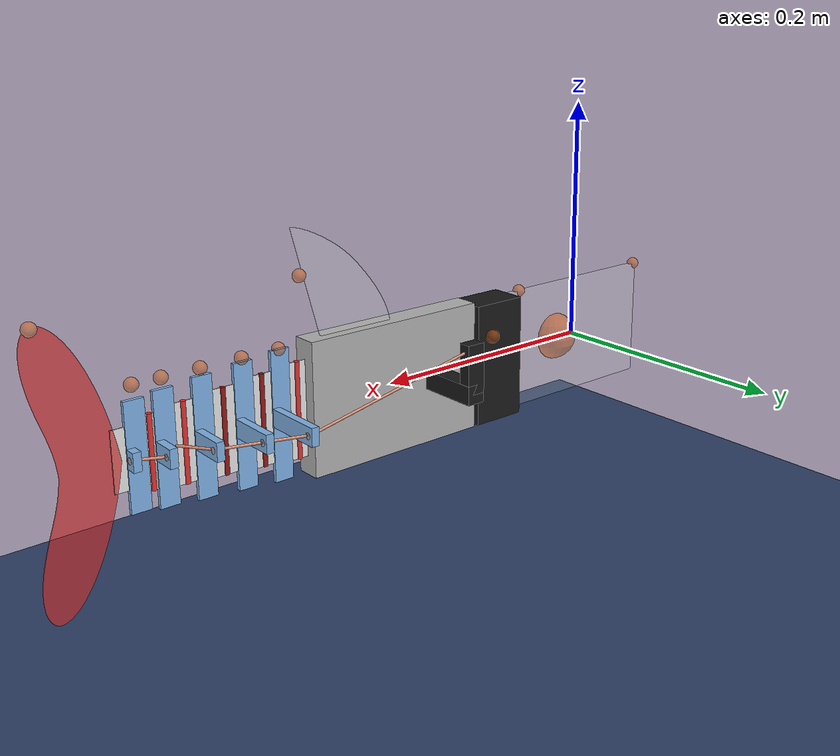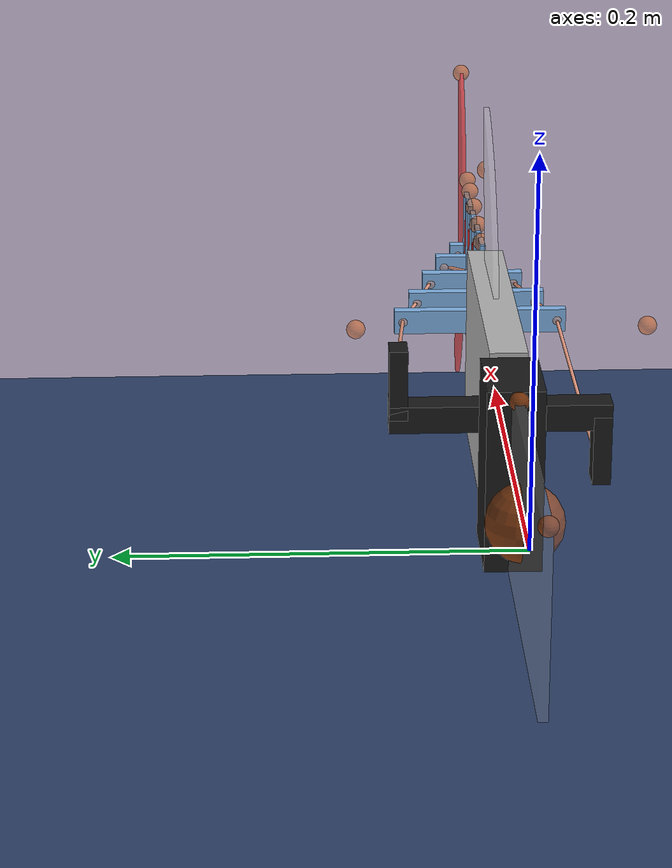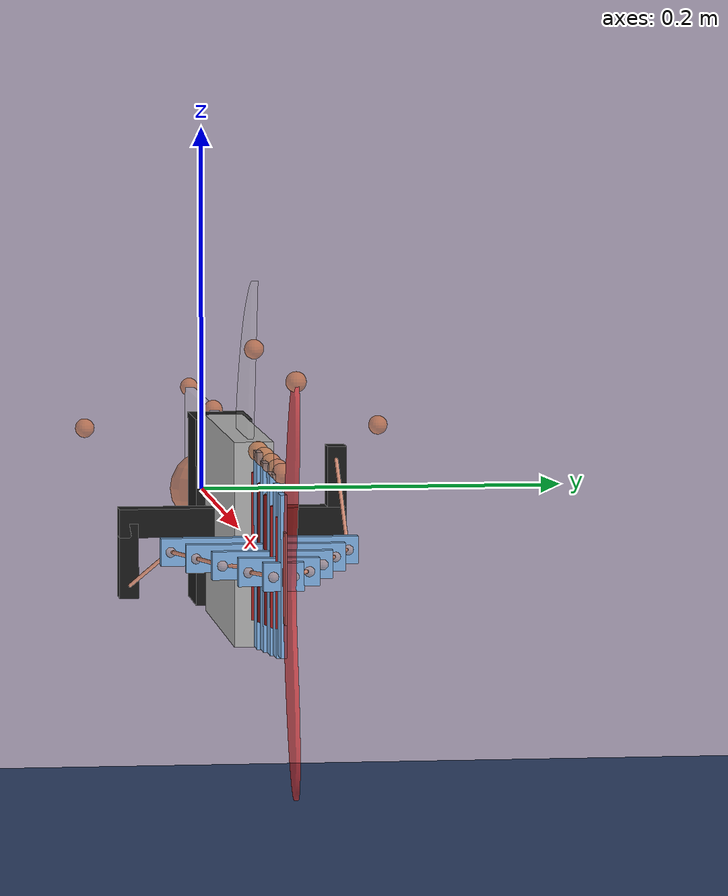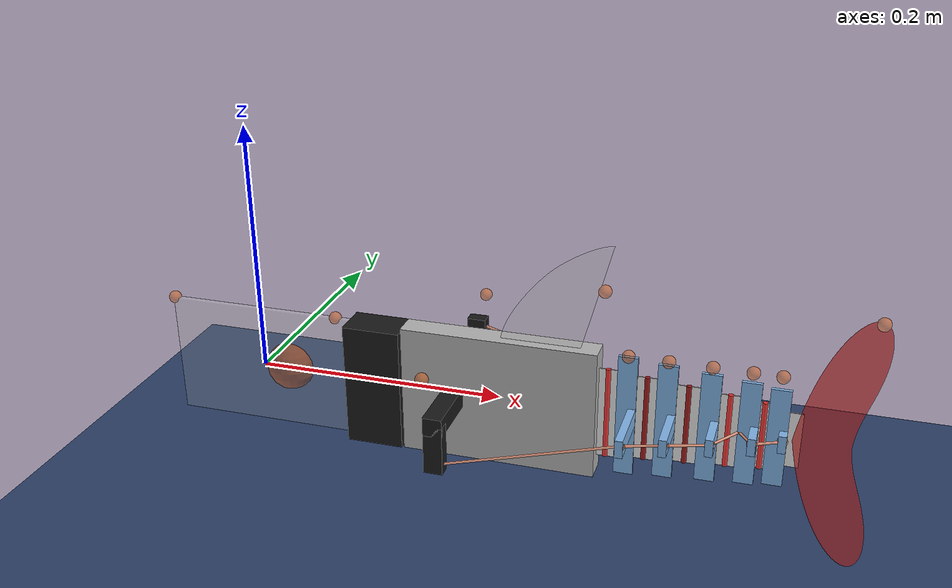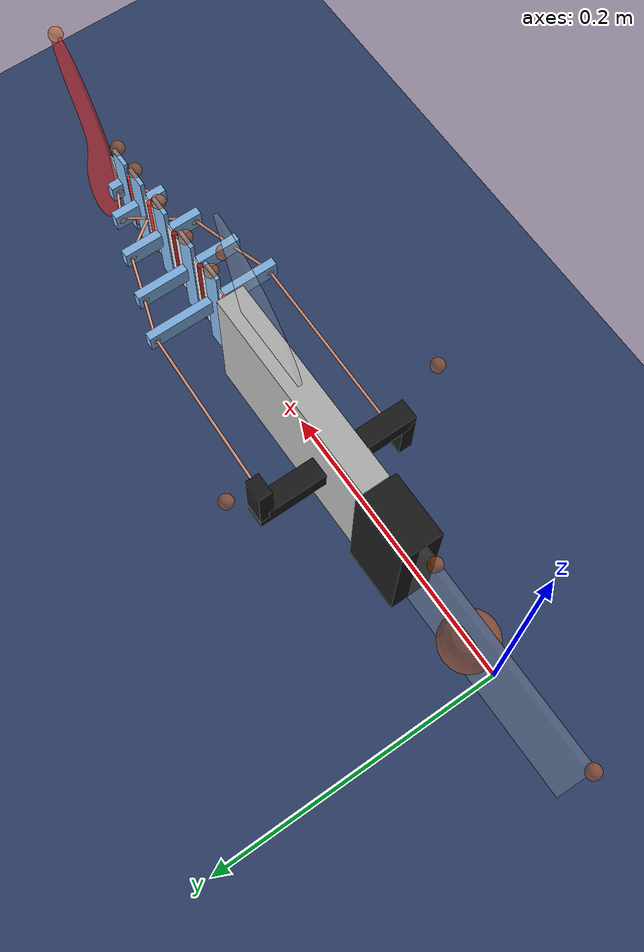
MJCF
<!-- Code entirely from Mike Yan Michelis-->
<mujoco model="tendonFish">
    <option gravity="0 0 0" density="1000" viscosity="0.0013" integrator="implicitfast" timestep="0.001" iterations="100" solver="Newton" tolerance="1e-15" ls_tolerance="1e-9" noslip_tolerance="1e-9" o_solimp="0 0.01 0.01 0.1 2">
        <flag contact="disable"/>
    </option>

    <visual>
        <global offheight="2160" offwidth="3840"/>
        <rgba haze=".3 .3 .3 1"/>
    </visual>

    <asset>
        <texture type="skybox" builtin="gradient" rgb1="0.6 0.6 0.6" rgb2="0 0 0" width="512" height="512"/>
        <texture name="texplane" type="2d" builtin="checker" rgb1=".15 .2 .35" rgb2=".2 .3 .45" width="512" height="512" mark="cross" markrgb=".8 .8 .8"/>
        <material name="matplane" reflectance="0.3" texture="texplane" texrepeat="10 10" texuniform="true"/>
        <mesh name="finTop" file="C:\Users\15405\OneDrive\Desktop\Career\ETHZ\ETHZ Work\mujoco-3.3.2-windows-x86_64\model\mesh\finTop.obj"/>
        <mesh name="finTail" file="C:\Users\15405\OneDrive\Desktop\Career\ETHZ\ETHZ Work\mujoco-3.3.2-windows-x86_64\model\mesh\finTail.obj"/>

        <material name="acrylic" rgba=".9 .9 .9 0.2"/>
        <material name="alu" reflectance="0.9" specular="0.9" shininess="0.9" rgba=".7 .7 .7 1"/>
        <material name="marker" rgba=".9 .4 .1 .5"/>
    </asset>

    <default>
        <joint type="hinge" pos="0 0 0" axis="0 0 1" range="-80 80" stiffness="0.65" damping="0.0"/>
        <geom fluidcoef="0.1 0.1 0.1 2.0 1.0" condim="1"/>
        <tendon width="0.001" rgba=".9 .6 .5 1" stiffness="20000" damping="10"/>
    </default>

    <worldbody>
        <camera name="fixed" pos="0.4 -1.2 1.2" xyaxes="1 0 0 0 1 1"/>
        <camera name="fixedTop" pos="-0.75 0 1.5" xyaxes="0 -1 0 1 0 0.75"/>
        <camera name="fixedDiag" pos="0.75 -1 1" xyaxes="0.8 0.6 0 -0.4 0.5 0.75"/>
        <camera pos="0.625 -0.592 0.720" xyaxes="0.758 0.653 -0.000 -0.468 0.544 0.697"/>

        <geom name="floor" pos="0 0 -0.2" size="0 0 1" type="plane" material="matplane"/>
        <geom name="ceiling" pos="0 0 0.2" size="0 0 1" zaxis="0 0 -1" type="plane" rgba=".7 .1 .1 0"/>
        <light directional="true" diffuse=".8 .8 .8" specular=".2 .2 .2" pos="0 0 5" dir="0 0 -1"/>

        <body pos="0 0 0">
            <joint name="headX" pos="0.02432519 0 0.00306519" type="slide" axis="1 0 0" stiffness="0" damping="0"/>
            <joint name="headY" pos="0.02432519 0 0.00306519" type="slide" axis="0 1 0" stiffness="0" damping="0"/>
            <joint name="headZ" pos="0.02432519 0 0.00306519" type="slide" axis="0 0 1" stiffness="100" damping="10"/>

            <joint name="headRollX" type="hinge" pos="0.02432519 0 0.00306519" axis="1 0 0" range="-180 180" stiffness="10" damping="1"/>
            <joint name="headRollY" type="hinge" pos="0.02432519 0 0.00306519" axis="0 1 0" range="-180 180" stiffness="10" damping="1"/>
            <joint name="headRollZ" type="hinge" pos="0.02432519 0 0.00306519" axis="0 0 1" range="-180 180" stiffness="0" damping="0"/>

            <site name="COM" pos="0.02432519 0 0.00306519" size="0.02" material="marker"/>

            <geom name="headPlate" type="box" pos="0 0 0" size="0.077 0.0025 0.05" material="acrylic" density="1180" fluidshape="ellipsoid"/>
            <geom name="headTopPlate" type="box" pos="0.01 0 0.0515" size="0.08 0.02 0.0015" rgba=".9 .9 .9 0" density="1180"/>
            <geom name="headTopElectric" type="box" pos="0.005 0 0.083" size="0.06 0.04 0.03" rgba=".9 .9 .2 0." mass="0.53"/>
            <geom name="headAttachment" type="box" pos="0.1 0 0" size="0.023 0.015 0.05" rgba=".1 .1 .1 1" mass="0.08" fluidshape="ellipsoid"/>

            <geom name="body" type="box" pos="0.2005 0 0" size="0.0775 0.01 0.0525" material="alu" mass="0.6" fluidshape="ellipsoid"/>
            <geom name="body-joint0" type="box" pos="0.28150000000000003 0 0" size="0.0035 0.0005 0.0375" rgba=".9 .9 .9 1" mass="0.001" fluidshape="ellipsoid"/>

            <geom name="finTop" type="mesh" mesh="finTop" pos="0.26 0 0.04" material="acrylic" density="1180"/>

            <site name="marker0" pos="-0.077 0 0.05" size="0.005" material="marker"/>
            <site name="marker1" pos="0.065 0 0.05" size="0.005" material="marker"/>
            <site name="marker2" pos="0.1655 -0.0775 0.05" size="0.005" material="marker"/>
            <site name="marker3" pos="0.1655 0.0775 0.05" size="0.005" material="marker"/>
            <site name="bodyFin" pos="0.28 0 0.1" size="0.005" material="marker"/>

            <body pos="0.1655 0 0" name="motor">
                <joint name="motor" type="hinge" axis="0 1 0" pos="0 0 0" limited="false" stiffness="0" damping="0"/>
                <geom name="motorShaft" type="box" pos="0 0 0" size="0.0075 0.06 0.0075" rgba=".1 .1 .1 1" mass="0.05" fluidshape="ellipsoid"/>
                <geom name="motorArmLeft" type="box" pos="0 -0.055 -0.01975" size="0.0075 0.005 0.01975" rgba=".1 .1 .1 1" density="1250" fluidshape="ellipsoid"/>
                <geom name="motorArmRight" type="box" pos="0 0.055 0.01975" size="0.0075 0.005 0.01975" rgba=".1 .1 .1 1" density="1250" fluidshape="ellipsoid"/>

                <site name="bodyLeft" pos="0 -0.055 -0.0345" size="0.005" rgba=".9 .6 .5 .5"/>
                <site name="bodyRight" pos="0 0.055 0.0345" size="0.005" rgba=".9 .6 .5 .5"/>
            </body>

            <body pos="0.28500000000000003 0 0">
                <geom name="joint0" type="cylinder" pos="0 0 0" size="0.002 0.0376" rgba=".9 .2 .2 1" mass="0"/>
                <joint name="joint0"/>
                <geom name="joint0-tail0" type="box" pos="0.0035 0 0" size="0.0035 0.0005 0.0375" rgba=".9 .9 .9 1" mass="0.001" fluidshape="ellipsoid"/>
                <geom name="tail0" type="box" pos="0.014499999999999999 0 0" size="0.0075 0.0015 0.05" rgba=".5 .7 .9 1" density="1250" fluidshape="ellipsoid"/>
                <site name="marker4" pos="0.014499999999999999 0 0.05" size="0.005" material="marker"/>

                <geom name="tail0left" type="box" pos="0.019 -0.02575 0" size="0.003 0.02425 0.007" rgba=".5 .7 .9 1" density="1250" fluidshape="ellipsoid"/>
                <geom name="tail0right" type="box" pos="0.019 0.02575 0" size="0.003 0.02425 0.007" rgba=".5 .7 .9 1" density="1250" fluidshape="ellipsoid"/>
                <site name="tail0left" pos="0.019 -0.045 0" size="0.004" rgba=".9 .6 .5 .5"/>
                <site name="tail0right" pos="0.019 0.045 0" size="0.004" rgba=".9 .6 .5 .5"/>

                <geom name="tail0-joint1" type="box" pos="0.02575 0 0" size="0.00375 0.0005 0.035" rgba=".9 .9 .9 1" mass="0.001" fluidshape="ellipsoid"/>

                <body pos="0.0295 0 0">
                    <geom name="joint1" type="cylinder" pos="0 0 0" size="0.002 0.0351" rgba=".6 .1 .1 1" mass="0"/>
                    <joint name="joint1"/>
                    <geom name="joint1-tail1" type="box" pos="0.00375 0 0" size="0.00375 0.0005 0.035" rgba=".9 .9 .9 1" mass="0.001" fluidshape="ellipsoid"/>
                    <geom name="tail1" type="box" pos="0.015 0 0" size="0.0075 0.0015 0.0475" rgba=".5 .7 .9 1" density="1250" fluidshape="ellipsoid"/>
                    <site name="marker5" pos="0.015 0 0.05" size="0.005" material="marker"/>

                    <geom name="tail1left" type="box" pos="0.0195 -0.02075 0" size="0.003 0.01925 0.007" rgba=".5 .7 .9 1" density="1250" fluidshape="ellipsoid"/>
                    <geom name="tail1right" type="box" pos="0.0195 0.02075 0" size="0.003 0.01925 0.007" rgba=".5 .7 .9 1" density="1250" fluidshape="ellipsoid"/>
                    <site name="tail1left" pos="0.0195 -0.035 0" size="0.004" rgba=".9 .6 .5 .5"/>
                    <site name="tail1right" pos="0.0195 0.035 0" size="0.004" rgba=".9 .6 .5 .5"/>

                    <geom name="tail1-joint2" type="box" pos="0.02675 0 0" size="0.00425 0.0005 0.0325" rgba=".9 .9 .9 1" mass="0.001" fluidshape="ellipsoid"/>

                    <body pos="0.031 0 0">
                        <geom name="joint2" type="cylinder" pos="0 0 0" size="0.002 0.0326" rgba=".6 .1 .1 1" mass="0"/>
                        <joint name="joint2"/>
                        <geom name="joint2-tail2" type="box" pos="0.00425 0 0" size="0.00425 0.0005 0.0325" rgba=".9 .9 .9 1" mass="0.001" fluidshape="ellipsoid"/>
                        <geom name="tail2" type="box" pos="0.016 0 0" size="0.0075 0.0015 0.045" rgba=".5 .7 .9 1" density="1250" fluidshape="ellipsoid"/>
                        <site name="marker6" pos="0.016 0 0.05" size="0.005" material="marker"/>

                        <geom name="tail2left" type="box" pos="0.0205 -0.01575 0" size="0.003 0.01425 0.007" rgba=".5 .7 .9 1" density="1250" fluidshape="ellipsoid"/>
                        <geom name="tail2right" type="box" pos="0.0205 0.01575 0" size="0.003 0.01425 0.007" rgba=".5 .7 .9 1" density="1250" fluidshape="ellipsoid"/>
                        <site name="tail2left" pos="0.0205 -0.025 0" size="0.004" rgba=".9 .6 .5 .5"/>
                        <site name="tail2right" pos="0.0205 0.025 0" size="0.004" rgba=".9 .6 .5 .5"/>

                        <geom name="tail2-joint3" type="box" pos="0.027 0 0" size="0.0035 0.0005 0.03" rgba=".9 .9 .9 1" mass="0.001" fluidshape="ellipsoid"/>

                        <body pos="0.0305 0 0">
                            <geom name="joint3" type="cylinder" pos="0 0 0" size="0.002 0.0301" rgba=".9 .2 .2 1" mass="0"/>
                            <joint name="joint3"/>
                            <geom name="joint3-tail3" type="box" pos="0.0035 0 0" size="0.0035 0.0005 0.03" rgba=".9 .9 .9 1" mass="0.001" fluidshape="ellipsoid"/>
                            <geom name="tail3" type="box" pos="0.014499999999999999 0 0" size="0.0075 0.0015 0.0425" rgba=".5 .7 .9 1" density="1250" fluidshape="ellipsoid"/>
                            <site name="marker7" pos="0.014499999999999999 0 0.05" size="0.005" material="marker"/>

                            <geom name="tail3left" type="box" pos="0.019 -0.01075 0" size="0.003 0.00925 0.007" rgba=".5 .7 .9 1" density="1250" fluidshape="ellipsoid"/>
                            <geom name="tail3right" type="box" pos="0.019 0.01075 0" size="0.003 0.00925 0.007" rgba=".5 .7 .9 1" density="1250" fluidshape="ellipsoid"/>
                            <site name="tail3left" pos="0.019 -0.015 0" size="0.004" rgba=".9 .6 .5 .5"/>
                            <site name="tail3right" pos="0.019 0.015 0" size="0.004" rgba=".9 .6 .5 .5"/>

                            <geom name="tail3-joint4" type="box" pos="0.0235 0 0" size="0.0015 0.0005 0.0275" rgba=".9 .9 .9 1" mass="0.001" fluidshape="ellipsoid"/>

                            <body pos="0.024999999999999998 0 0">
                                <geom name="joint4" type="cylinder" pos="0 0 0" size="0.002 0.0276" rgba=".9 .2 .2 1" mass="0"/>
                                <joint name="joint4"/>
                                <geom name="joint4-tail4" type="box" pos="0.0015 0 0" size="0.0015 0.0005 0.0275" rgba=".9 .9 .9 1" mass="0.001" fluidshape="ellipsoid"/>
                                <geom name="tail4" type="box" pos="0.010499999999999999 0 0" size="0.0075 0.0015 0.04" rgba=".5 .7 .9 1" density="1250" fluidshape="ellipsoid"/>
                                <site name="marker8" pos="0.010499999999999999 0 0.05" size="0.005" material="marker"/>

                                <geom name="tail4left" type="box" pos="0.015 -0.00575 0" size="0.003 0.00425 0.007" rgba=".5 .7 .9 1" density="1250" fluidshape="ellipsoid"/>
                                <geom name="tail4right" type="box" pos="0.015 0.00575 0" size="0.003 0.00425 0.007" rgba=".5 .7 .9 1" density="1250" fluidshape="ellipsoid"/>
                                <site name="tail4left" pos="0.015 -0.005 0" size="0.004" rgba=".9 .6 .5 .5"/>
                                <site name="tail4right" pos="0.015 0.005 0" size="0.004" rgba=".9 .6 .5 .5"/>

                                <!-- Tail Fin -->
                                <geom name="tail4-finTail" type="box" pos="0.023 0 0" size="0.005 0.0005 0.0225" rgba=".9 .9 .9 1" mass="0.001" fluidshape="ellipsoid"/>
                                <geom name="finTail" type="mesh" mesh="finTail" pos="0.015999999999999997 0 0" rgba=".9 .2 .2 0.7" mass="0.01" fluidshape="ellipsoid"/>
                                <site name="marker9" pos="0.073 0 0.1" size="0.005" material="marker"/>
                            </body>
                        </body>
                    </body>
                </body>
            </body>
        </body>

    </worldbody>

    <tendon>
        <spatial name="tendonLeft">
            <site site="bodyLeft"/>
            <site site="tail0left"/>
            <site site="tail1left"/>
            <site site="tail2left"/>
            <site site="tail3right"/>
            <site site="tail4right"/>
        </spatial>
        <spatial name="tendonRight">
            <site site="bodyRight"/>
            <site site="tail0right"/>
            <site site="tail1right"/>
            <site site="tail2right"/>
            <site site="tail3left"/>
            <site site="tail4left"/>
        </spatial>
    </tendon>

    <actuator>
        <velocity name="motor" joint="motor" kv="100" ctrllimited="true" ctrlrange="-100 100" forcerange="-100 100"/>
    </actuator>

</mujoco>
